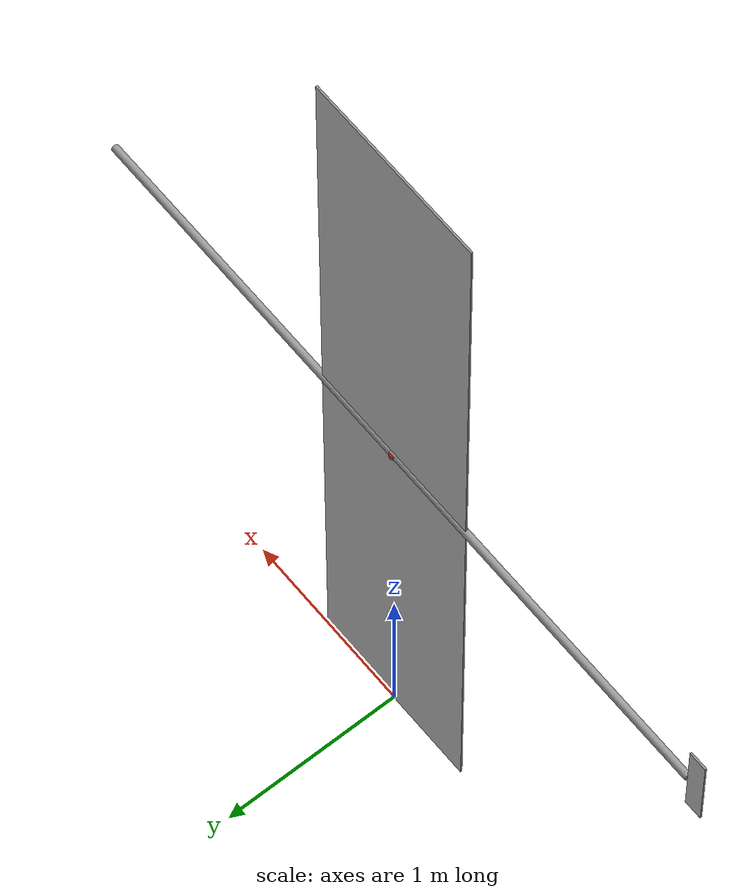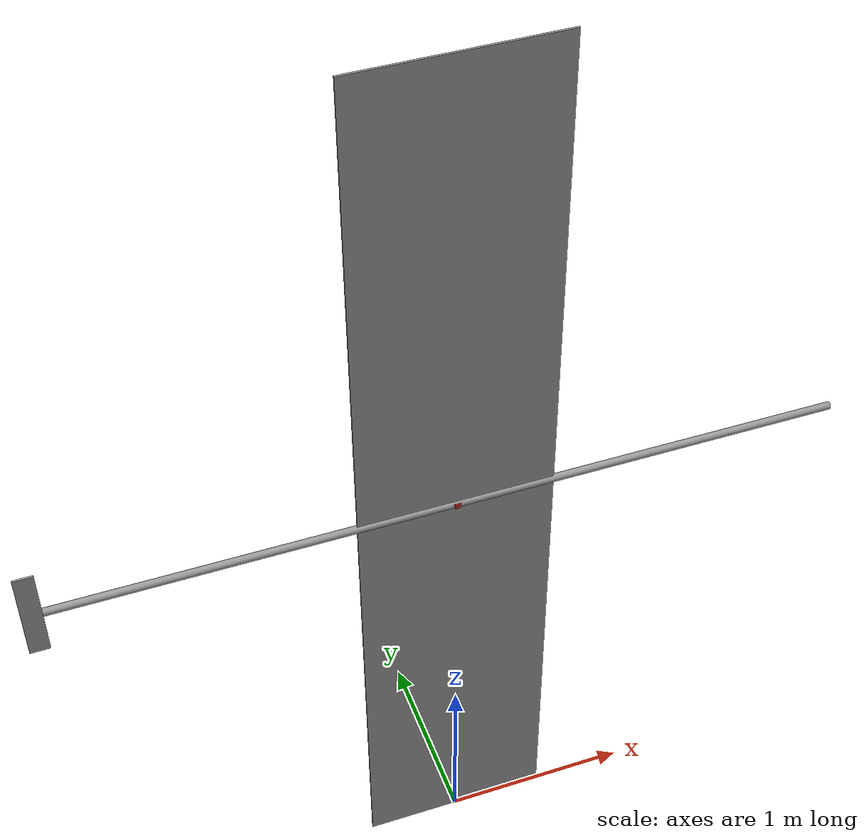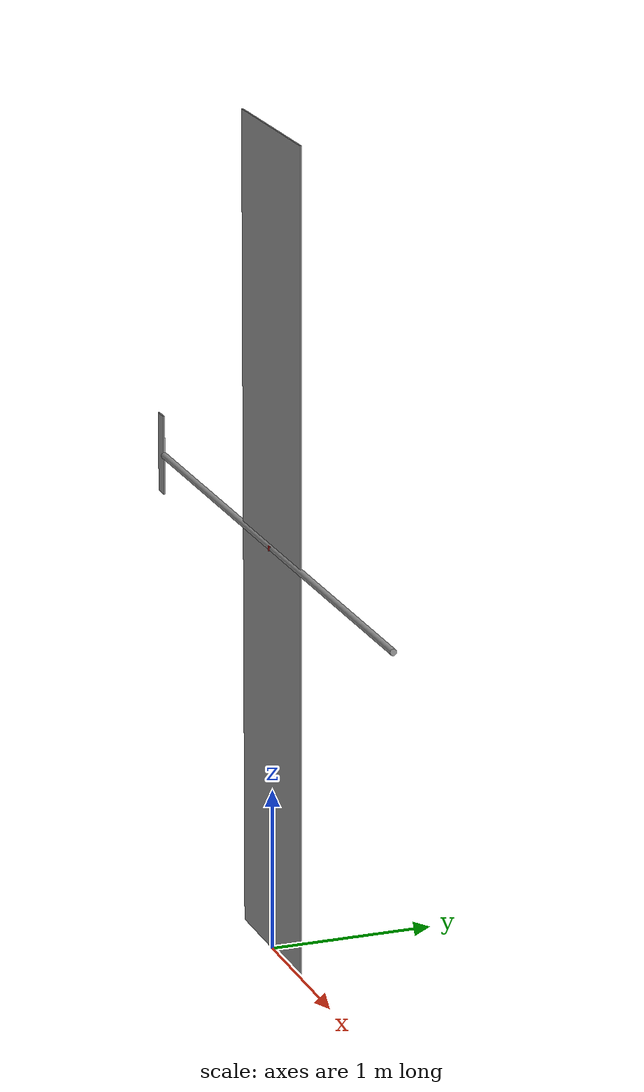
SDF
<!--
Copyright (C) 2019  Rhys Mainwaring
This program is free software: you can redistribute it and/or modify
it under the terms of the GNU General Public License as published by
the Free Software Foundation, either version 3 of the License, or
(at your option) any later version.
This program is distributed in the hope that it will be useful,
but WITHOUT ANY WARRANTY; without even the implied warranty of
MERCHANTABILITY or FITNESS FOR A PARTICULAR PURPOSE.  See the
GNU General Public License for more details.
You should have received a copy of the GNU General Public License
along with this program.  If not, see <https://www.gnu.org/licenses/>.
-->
<?xml version='1.0'?>
<sdf version='1.6'>
  <model name='wing_sail'>
    <pose>0 0 0 0 0 0</pose>
    <static>false</static>

    <!-- Joystick teleop -->
    <!-- Keyboard teleop  -->
    <plugin name="trim_tab_joint_controller" filename="libKeysToJointsPlugin.so">
      <!-- keycode 56 = '8' -->
      <map
        key="56"
        joint="trim_tab_joint"
        scale="0.05"
        type="position"
        kp="1000"
        ki="0"
        kd="10"
      />
      <!-- keycode 50 = '2' -->
      <map
        key="50"
        joint="trim_tab_joint"
        scale="-0.05"
        type="position"
        kp="1000"
        ki="0"
        kd="10"
      />
    </plugin>

    <plugin name="wing_sail_liftdrag" filename="libSailLiftDragPlugin.so">
      <a0>0.0</a0>
      <alpha_stall>0.7854</alpha_stall>
      <cla>1.2732</cla>
      <cla_stall>-1.2732</cla_stall>
      <cda>0.6366</cda>
      <area>1.0</area>
      <fluid_density>1.2</fluid_density>
      <forward>1 0 0</forward>
      <upward>0 1 0</upward>
      <cp>0 0 0</cp>
      <link_name>base_link</link_name>
      <radial_symmetry>true</radial_symmetry>
    </plugin>

    <plugin name="trim_tab_liftdrag" filename="libSailLiftDragPlugin.so">
      <a0>0.0</a0>
      <alpha_stall>0.7854</alpha_stall>
      <cla>1.2732</cla>
      <cla_stall>-1.2732</cla_stall>
      <cda>0.6366</cda>
      <area>1.0</area>
      <fluid_density>1.2</fluid_density>
      <forward>1 0 0</forward>
      <upward>0 1 0</upward>
      <cp>0 0 0</cp>
      <link_name>trim_tab_link</link_name>
      <radial_symmetry>true</radial_symmetry>
    </plugin>

    <!-- Wing sail -->
    <link name="base_link">
      <pose>0 0 2.5 0 0 0</pose>
      <visual name="sail_visual">
        <geometry>
          <box>
            <size>1 0.01 5</size>
          </box>
        </geometry>
        <material>
          <script>
            <name>Gazebo/Gray</name>
          </script>
        </material>
      </visual>
      <collision name="sail_collision">
        <geometry>
          <box>
            <size>1 0.01 5</size>
          </box>
        </geometry>
      </collision>

      <visual name="trim_tab_support_visual">
        <pose>0 0 0 0 1.570796 0</pose>
        <geometry>
          <cylinder>
            <radius>0.02</radius>
            <length>4</length>
          </cylinder>
        </geometry>
        <material>
          <script>
            <name>Gazebo/Gray</name>
          </script>
        </material>
      </visual>

      <inertial>
        <pose>0 0 0 0 0 0</pose>
        <mass>10</mass>
        <inertia>
          <ixx>1.6</ixx>
          <ixy>0</ixy>
          <iyy>1.6</iyy>
          <iyz>0</iyz>
          <izz>1.6</izz>
        </inertia>
      </inertial>

      <!-- Sensors -->
      <sensor name="anemometer_sensor" type="anemometer">
        <pose>0 0 0 0 0 0</pose>
        <always_on>true</always_on>
        <update_rate>50</update_rate>
        <topic>anemometer</topic>
      </sensor>
      <visual name="anemometer_visual">
        <pose>0 0 0 0 0 0</pose>
        <geometry>
          <cylinder>
            <radius>0.025</radius>
            <length>0.025</length>
          </cylinder>
        </geometry>
        <material>
          <script>
            <name>Gazebo/Red</name>
          </script>
        </material>
      </visual>
    </link>

    <joint type="revolute" name="wing_sail_joint">
      <pose>0 0 0 0 0 0</pose>
      <child>base_link</child>
      <parent>world</parent>
      <axis>
        <xyz>0 0 1</xyz>
        <initial_position>0</initial_position>
        <limit>
          <lower>-1.5</lower>
          <upper>1.5</upper>
        </limit>
      </axis>
      <sensor name="wing_sail_force_torque" type="force_torque">
        <always_on>true</always_on>
        <update_rate>30</update_rate>
        <visualize>true</visualize>
      </sensor>
    </joint>

    <!-- Trim tab -->
    <link name="trim_tab_link">
      <pose>-2.05 0 2.5 0 0 0</pose>

      <visual name="trim_tab_visual">
        <geometry>
          <box>
            <size>0.1 0.01 0.5</size>
          </box>
        </geometry>
        <material>
          <script>
            <name>Gazebo/Gray</name>
          </script>
        </material>
      </visual>

      <collision name="trim_tab_collision">
        <geometry>
          <box>
            <size>0.1 0.01 0.5</size>
          </box>
        </geometry>
      </collision>

      <inertial>
        <pose>0 0 0 0 0 0</pose>
        <mass>1</mass>
        <inertia>
          <ixx>0.16</ixx>
          <ixy>0</ixy>
          <iyy>0.16</iyy>
          <iyz>0</iyz>
          <izz>0.16</izz>
        </inertia>
      </inertial>

    </link>

    <joint type="revolute" name="trim_tab_joint">
      <pose>0.05 0 0 0 0 0</pose>
      <child>trim_tab_link</child>
      <parent>base_link</parent>
      <axis>
        <xyz>0 0 1</xyz>
        <initial_position>0</initial_position>
        <limit>
          <lower>-1.5</lower>
          <upper>1.5</upper>
        </limit>
      </axis>
      <sensor name="trim_tab_force_torque" type="force_torque">
        <always_on>true</always_on>
        <update_rate>30</update_rate>
        <visualize>true</visualize>
      </sensor>
    </joint>

  </model>
</sdf>
